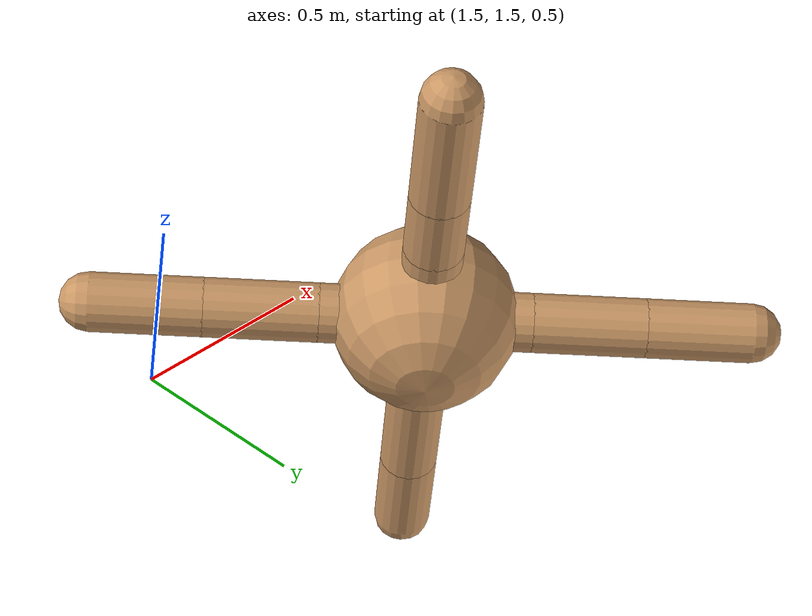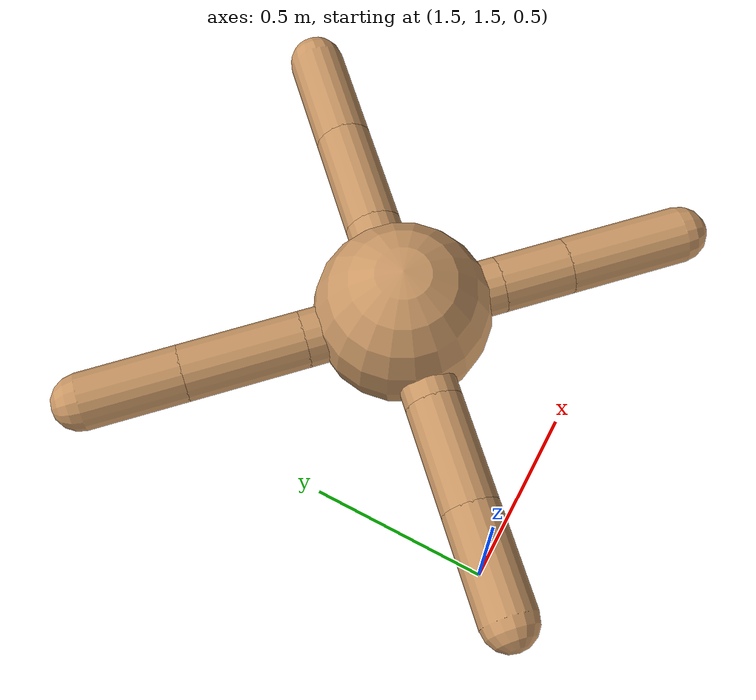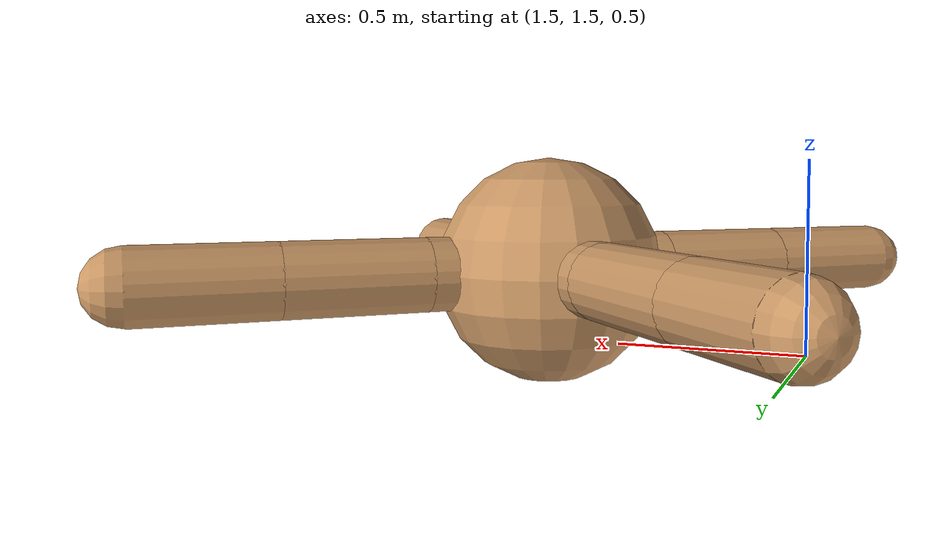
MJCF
<?xml version="1.0" ?>
<mujoco>
    <default>
        <joint armature="1" damping="1" limited="true"/>
        <geom condim="3" conaffinity="0" density="5.0" friction="1 0.5 0.5" margin="0.01" rgba="0.8 0.6 0.4 1"/>
    </default>
    <worldbody>
        <body name="Base_2" pos="2.0 2.0 0.75">
            <joint type="free" armature="0" damping="0" limited="false" margin="0.01" pos="0 0 0"/>
            <geom type="sphere" rgba="0.8 0.6 0.4 1" size="0.25"/>
            <camera name="track_2" mode="trackcom" pos="0 -3 0.3" xyaxes="1 0 0 0 0 1"/>
            <geom name="limb0_2" type="capsule" fromto="0 0 0 0.2 0.2 0.0" size="0.08"/>
            <body name="rod_0.1_2" pos="0.30728541217805516 0.30728541217805516 0.0">
                <geom type="capsule" fromto="-0.10728541217805518 -0.10728541217805518 -0.0 0.10728541217805518 0.10728541217805518 0.0" size="0.08" name="geom_0.1_2"/>
                <site pos="0 0 0" quat="0.9238795325112867 0.0 0.0 0.38268343236508984" name="site_0.1_2"/>
                <joint type="hinge" pos="-0.10728541217805518 -0.10728541217805518 -0.0" axis="0 0 1" range="-30 30" name="joint_Base=rod_0.1_2"/>
                <body pos="-0.10728541217805518 -0.10728541217805518 -0.0" name="p0_2">
                    <site name="p0_2"/>
                </body>
                <body name="rod_1.2_2" pos="0.20901430918842598 0.20901430918842598 0.0">
                    <geom type="capsule" fromto="-0.1017288970103708 -0.1017288970103708 -0.0 0.1017288970103708 0.1017288970103708 0.0" size="0.08" name="geom_1.2_2"/>
                    <site pos="0 0 0" quat="0.9238795325112867 0.0 0.0 0.3826834323650898" name="site_1.2_2"/>
                    <joint type="hinge" pos="-0.1017288970103708 -0.1017288970103708 -0.0" axis="-1 1 0" range="30 70" name="joint_rod_0.1=rod_1.2_2"/>
                    <body pos="-0.1017288970103708 -0.1017288970103708 -0.0" name="p1_2">
                        <site name="p1_2"/>
                    </body>
                </body>
            </body>
            <geom name="limb1_2" type="capsule" fromto="0 0 0 -0.2 0.2 0.0" size="0.08"/>
            <body name="rod_3.4_2" pos="-0.3203233657314467 0.3203233657314467 0.0">
                <geom type="capsule" fromto="0.12032336573144667 -0.12032336573144667 -0.0 -0.12032336573144667 0.12032336573144667 0.0" size="0.08" name="geom_3.4_2"/>
                <site pos="0 0 0" quat="0.38268343236508984 0.0 -0.0 0.9238795325112867" name="site_3.4_2"/>
                <joint type="hinge" pos="0.12032336573144667 -0.12032336573144667 -0.0" axis="0 0 1" range="-30 30" name="joint_Base=rod_3.4_2"/>
                <body pos="0.12032336573144667 -0.12032336573144667 -0.0" name="p3_2">
                    <site name="p3_2"/>
                </body>
                <body name="rod_4.5_2" pos="-0.21993150864993713 0.21993150864993713 0.0">
                    <geom type="capsule" fromto="0.09960814291849046 -0.09960814291849046 -0.0 -0.09960814291849046 0.09960814291849046 0.0" size="0.08" name="geom_4.5_2"/>
                    <site pos="0 0 0" quat="0.38268343236508984 0.0 -0.0 0.9238795325112867" name="site_4.5_2"/>
                    <joint type="hinge" pos="0.09960814291849046 -0.09960814291849046 -0.0" axis="1 1 0" range="-70 -30" name="joint_rod_3.4=rod_4.5_2"/>
                    <body pos="0.09960814291849046 -0.09960814291849046 -0.0" name="p4_2">
                        <site name="p4_2"/>
                    </body>
                </body>
            </body>
            <geom name="limb2_2" type="capsule" fromto="0 0 0 -0.2 -0.2 0.0" size="0.08"/>
            <body name="rod_6.7_2" pos="-0.30758807255532905 -0.30758807255532905 0.0">
                <geom type="capsule" fromto="0.10758807255532901 0.10758807255532901 -0.0 -0.10758807255532901 -0.10758807255532901 0.0" size="0.08" name="geom_6.7_2"/>
                <site pos="0 0 0" quat="0.38268343236508984 0.0 -0.0 -0.9238795325112867" name="site_6.7_2"/>
                <joint type="hinge" pos="0.10758807255532901 0.10758807255532901 -0.0" axis="0 0 1" range="-30 30" name="joint_Base=rod_6.7_2"/>
                <body pos="0.10758807255532901 0.10758807255532901 -0.0" name="p6_2">
                    <site name="p6_2"/>
                </body>
                <body name="rod_7.8_2" pos="-0.2138590331033158 -0.2138590331033158 0.0">
                    <geom type="capsule" fromto="0.10627096054798679 0.10627096054798679 -0.0 -0.10627096054798679 -0.10627096054798679 0.0" size="0.08" name="geom_7.8_2"/>
                    <site pos="0 0 0" quat="0.38268343236508984 0.0 -0.0 -0.9238795325112867" name="site_7.8_2"/>
                    <joint type="hinge" pos="0.10627096054798679 0.10627096054798679 -0.0" axis="-1 1 0" range="-70 -30" name="joint_rod_6.7=rod_7.8_2"/>
                    <body pos="0.10627096054798679 0.10627096054798679 -0.0" name="p7_2">
                        <site name="p7_2"/>
                    </body>
                </body>
            </body>
            <geom name="limb3_2" type="capsule" fromto="0 0 0 0.2 -0.2 0.0" size="0.08"/>
            <body name="rod_9.10_2" pos="0.2703099465430964 -0.2703099465430964 0.0">
                <geom type="capsule" fromto="-0.07030994654309641 0.07030994654309641 -0.0 0.07030994654309641 -0.07030994654309641 0.0" size="0.08" name="geom_9.10_2"/>
                <site pos="0 0 0" quat="0.9238795325112867 0.0 0.0 -0.3826834323650898" name="site_9.10_2"/>
                <joint type="hinge" pos="-0.07030994654309641 0.07030994654309641 -0.0" axis="0 0 1" range="-30 30" name="joint_Base=rod_9.10_2"/>
                <body pos="-0.07030994654309641 0.07030994654309641 -0.0" name="p9_2">
                    <site name="p9_2"/>
                </body>
                <body name="rod_10.11_2" pos="0.19122020750057864 -0.19122020750057864 0.0">
                    <geom type="capsule" fromto="-0.12091026095748222 0.12091026095748222 -0.0 0.12091026095748222 -0.12091026095748222 0.0" size="0.08" name="geom_10.11_2"/>
                    <site pos="0 0 0" quat="0.9238795325112867 0.0 0.0 -0.3826834323650898" name="site_10.11_2"/>
                    <joint type="hinge" pos="-0.12091026095748222 0.12091026095748222 -0.0" axis="1 1 0" range="30 70" name="joint_rod_9.10=rod_10.11_2"/>
                    <body pos="-0.12091026095748222 0.12091026095748222 -0.0" name="p10_2">
                        <site name="p10_2"/>
                    </body>
                </body>
            </body>
        </body>
    </worldbody>
    <actuator>
        <motor gear="100" ctrlrange="-1.0 1.0" ctrllimited="true" joint="joint_Base=rod_0.1_2"/>
        <motor gear="100" ctrlrange="-1.0 1.0" ctrllimited="true" joint="joint_rod_0.1=rod_1.2_2"/>
        <motor gear="100" ctrlrange="-1.0 1.0" ctrllimited="true" joint="joint_Base=rod_3.4_2"/>
        <motor gear="100" ctrlrange="-1.0 1.0" ctrllimited="true" joint="joint_rod_3.4=rod_4.5_2"/>
        <motor gear="100" ctrlrange="-1.0 1.0" ctrllimited="true" joint="joint_Base=rod_6.7_2"/>
        <motor gear="100" ctrlrange="-1.0 1.0" ctrllimited="true" joint="joint_rod_6.7=rod_7.8_2"/>
        <motor gear="100" ctrlrange="-1.0 1.0" ctrllimited="true" joint="joint_Base=rod_9.10_2"/>
        <motor gear="100" ctrlrange="-1.0 1.0" ctrllimited="true" joint="joint_rod_9.10=rod_10.11_2"/>
    </actuator>
    <sensor>
        <accelerometer site="site_0.1"/>
        <gyro site="site_0.1"/>
        <magnetometer site="site_0.1"/>
        <accelerometer site="site_1.2"/>
        <gyro site="site_1.2"/>
        <magnetometer site="site_1.2"/>
        <accelerometer site="site_3.4"/>
        <gyro site="site_3.4"/>
        <magnetometer site="site_3.4"/>
        <accelerometer site="site_4.5"/>
        <gyro site="site_4.5"/>
        <magnetometer site="site_4.5"/>
        <accelerometer site="site_6.7"/>
        <gyro site="site_6.7"/>
        <magnetometer site="site_6.7"/>
        <accelerometer site="site_7.8"/>
        <gyro site="site_7.8"/>
        <magnetometer site="site_7.8"/>
        <accelerometer site="site_9.10"/>
        <gyro site="site_9.10"/>
        <magnetometer site="site_9.10"/>
        <accelerometer site="site_10.11"/>
        <gyro site="site_10.11"/>
        <magnetometer site="site_10.11"/>
    </sensor>
    <contact>
        <pair geom1="geom_0.1" geom2="floor"/>
        <pair geom1="geom_1.2" geom2="floor"/>
        <pair geom1="geom_3.4" geom2="floor"/>
        <pair geom1="geom_4.5" geom2="floor"/>
        <pair geom1="geom_6.7" geom2="floor"/>
        <pair geom1="geom_7.8" geom2="floor"/>
        <pair geom1="geom_9.10" geom2="floor"/>
        <pair geom1="geom_10.11" geom2="floor"/>
    </contact>
</mujoco>
